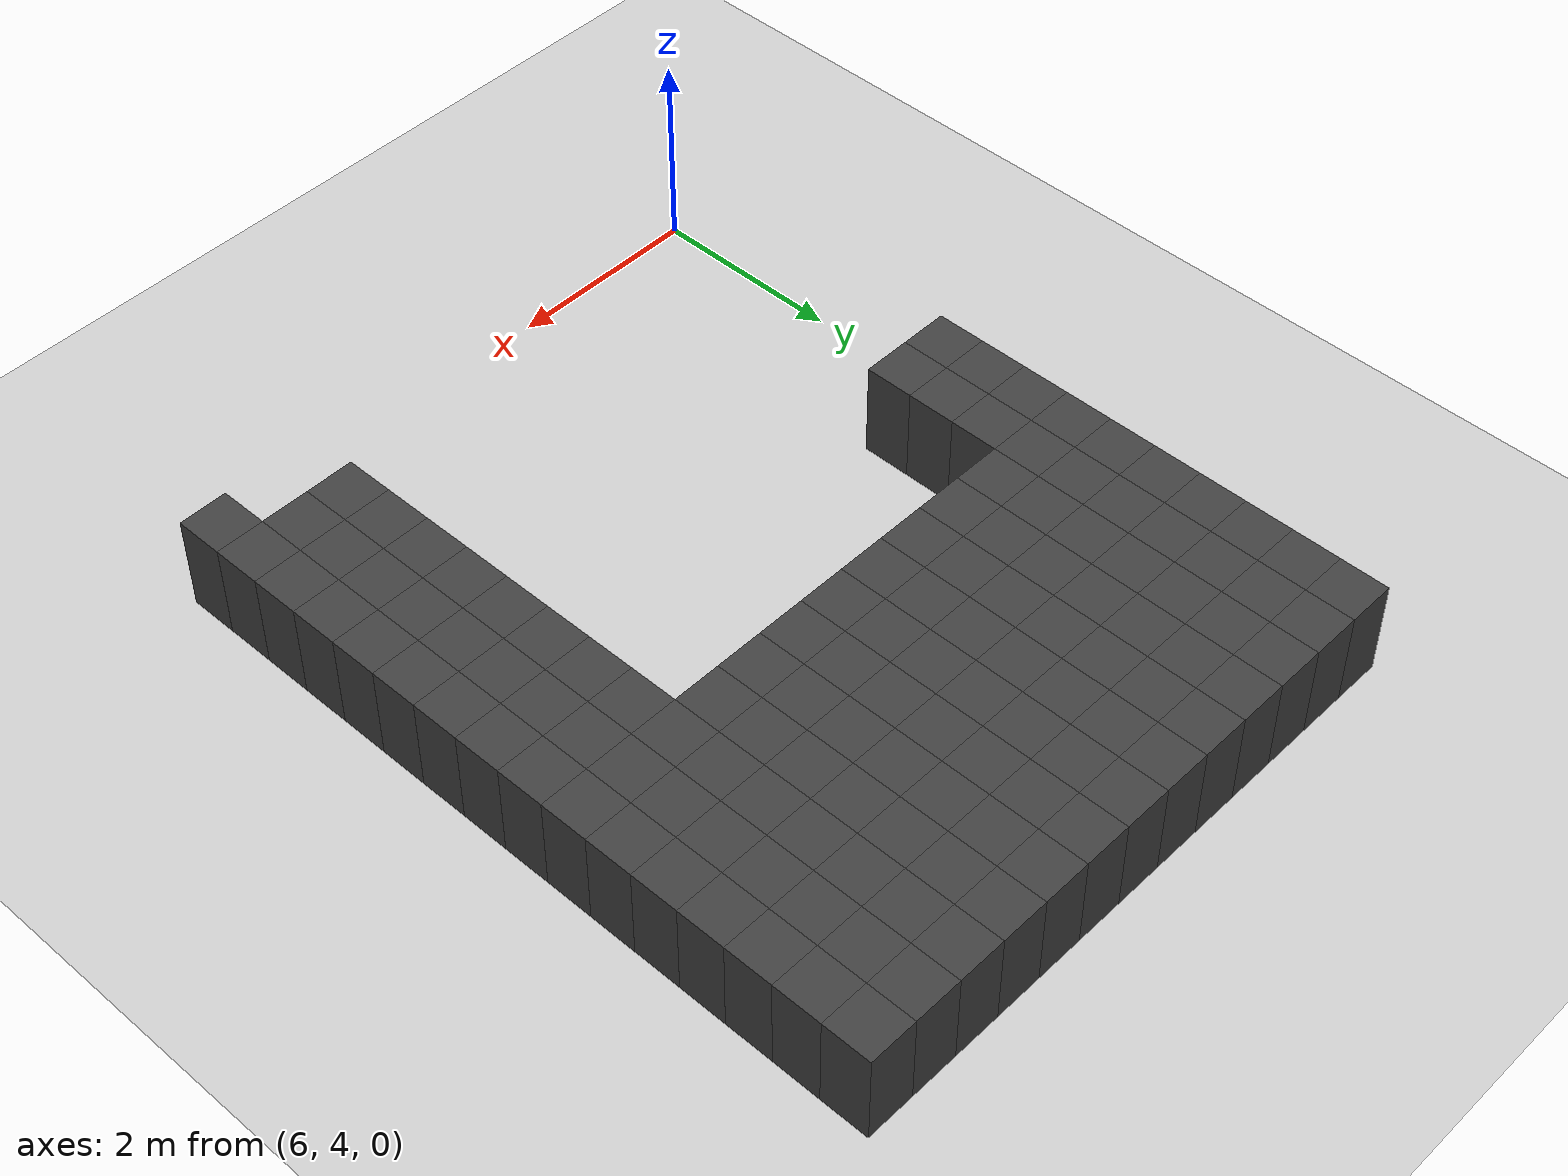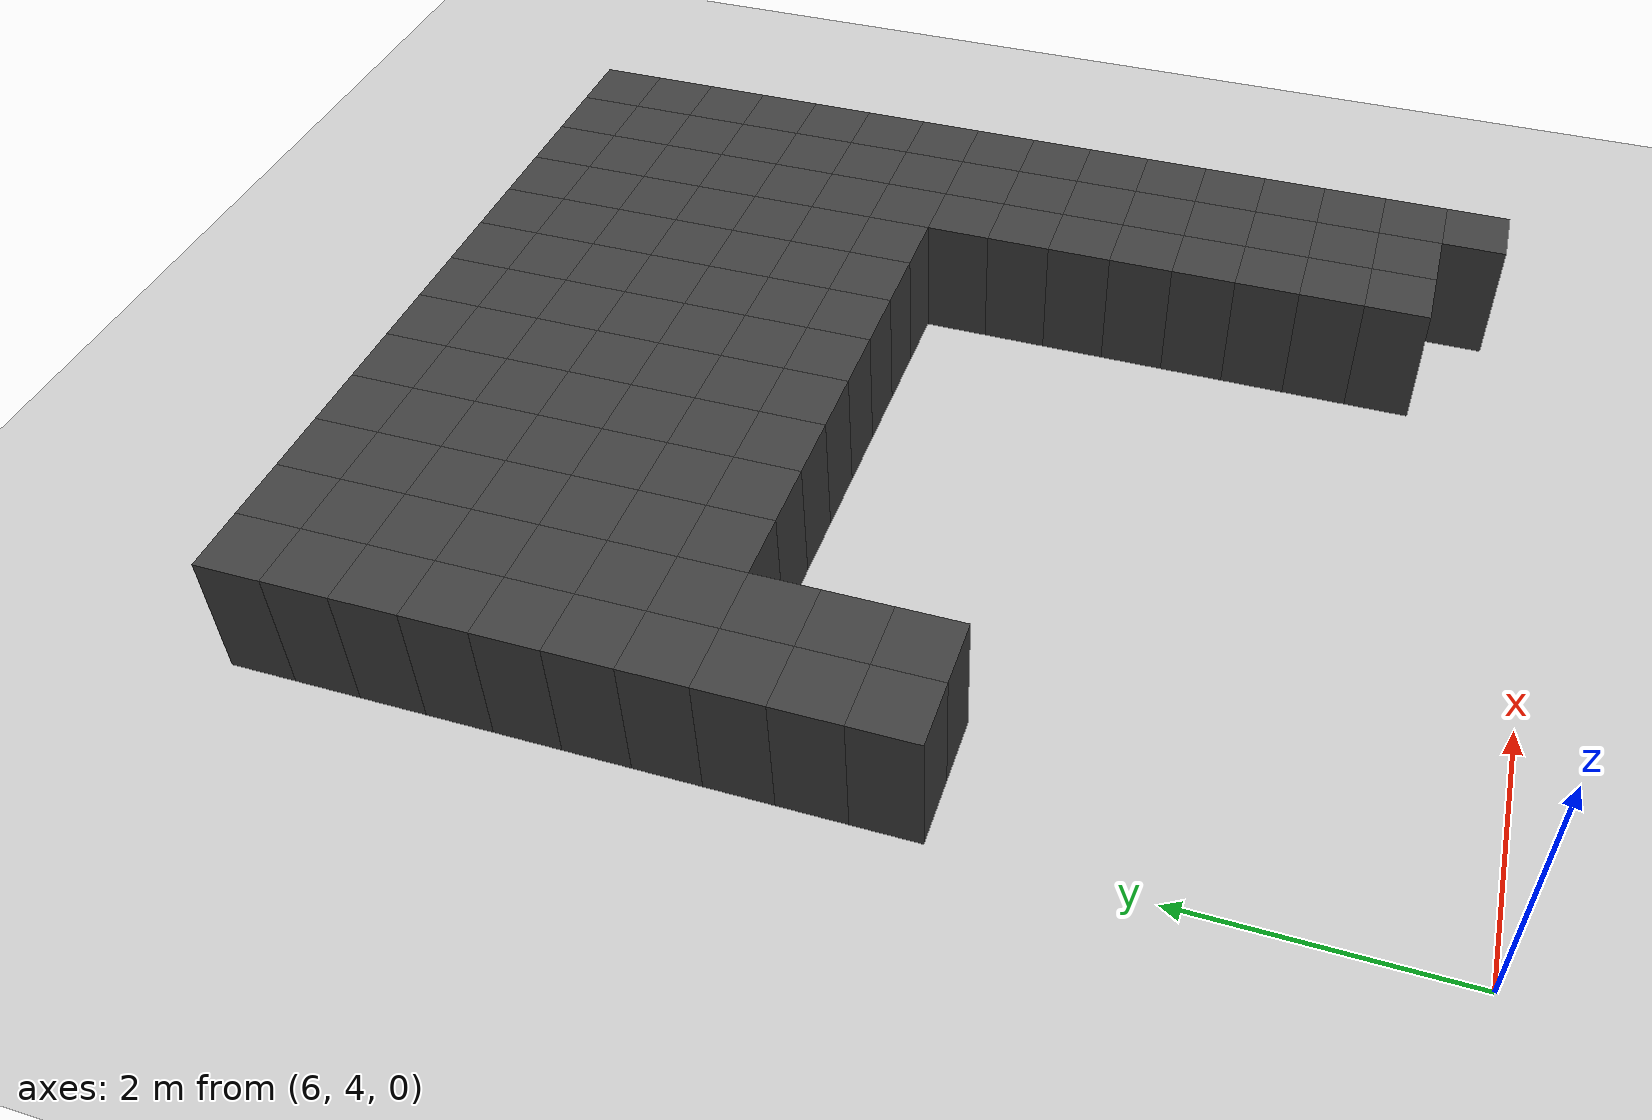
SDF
<sdf version="1.7">
 <world name="map_14547">
  <model name="ground_plane">
   <static>true</static>
   <link name="link">
    <collision name="collision">
     <geometry><plane><normal>0 0 1</normal><size>200 200</size></plane></geometry>
    </collision>
    <visual name="visual">
     <geometry><plane><normal>0 0 1</normal><size>200 200</size></plane></geometry>
     <material><ambient>0.8 0.8 0.8 1</ambient><diffuse>0.8 0.8 0.8 1</diffuse></material>
    </visual>
   </link>
  </model>
  <model name="maze_environment">
   <static>true</static>
   <link name="wall_37">
    <pose>6.250 12.250 0.500 0 0 0</pose>
    <collision name="col"><geometry><box><size>0.5 0.5 1.0</size></box></geometry></collision>
    <visual name="vis">
     <geometry><box><size>0.5 0.5 1.0</size></box></geometry>
     <material><ambient>0.15 0.15 0.15 1</ambient><diffuse>0.25 0.25 0.25 1</diffuse></material>
    </visual>
   </link>
   <link name="wall_38">
    <pose>6.750 12.250 0.500 0 0 0</pose>
    <collision name="col"><geometry><box><size>0.5 0.5 1.0</size></box></geometry></collision>
    <visual name="vis">
     <geometry><box><size>0.5 0.5 1.0</size></box></geometry>
     <material><ambient>0.15 0.15 0.15 1</ambient><diffuse>0.25 0.25 0.25 1</diffuse></material>
    </visual>
   </link>
   <link name="wall_39">
    <pose>7.250 12.250 0.500 0 0 0</pose>
    <collision name="col"><geometry><box><size>0.5 0.5 1.0</size></box></geometry></collision>
    <visual name="vis">
     <geometry><box><size>0.5 0.5 1.0</size></box></geometry>
     <material><ambient>0.15 0.15 0.15 1</ambient><diffuse>0.25 0.25 0.25 1</diffuse></material>
    </visual>
   </link>
   <link name="wall_40">
    <pose>7.750 12.250 0.500 0 0 0</pose>
    <collision name="col"><geometry><box><size>0.5 0.5 1.0</size></box></geometry></collision>
    <visual name="vis">
     <geometry><box><size>0.5 0.5 1.0</size></box></geometry>
     <material><ambient>0.15 0.15 0.15 1</ambient><diffuse>0.25 0.25 0.25 1</diffuse></material>
    </visual>
   </link>
   <link name="wall_41">
    <pose>8.250 12.250 0.500 0 0 0</pose>
    <collision name="col"><geometry><box><size>0.5 0.5 1.0</size></box></geometry></collision>
    <visual name="vis">
     <geometry><box><size>0.5 0.5 1.0</size></box></geometry>
     <material><ambient>0.15 0.15 0.15 1</ambient><diffuse>0.25 0.25 0.25 1</diffuse></material>
    </visual>
   </link>
   <link name="wall_42">
    <pose>8.750 12.250 0.500 0 0 0</pose>
    <collision name="col"><geometry><box><size>0.5 0.5 1.0</size></box></geometry></collision>
    <visual name="vis">
     <geometry><box><size>0.5 0.5 1.0</size></box></geometry>
     <material><ambient>0.15 0.15 0.15 1</ambient><diffuse>0.25 0.25 0.25 1</diffuse></material>
    </visual>
   </link>
   <link name="wall_43">
    <pose>9.250 12.250 0.500 0 0 0</pose>
    <collision name="col"><geometry><box><size>0.5 0.5 1.0</size></box></geometry></collision>
    <visual name="vis">
     <geometry><box><size>0.5 0.5 1.0</size></box></geometry>
     <material><ambient>0.15 0.15 0.15 1</ambient><diffuse>0.25 0.25 0.25 1</diffuse></material>
    </visual>
   </link>
   <link name="wall_44">
    <pose>9.750 12.250 0.500 0 0 0</pose>
    <collision name="col"><geometry><box><size>0.5 0.5 1.0</size></box></geometry></collision>
    <visual name="vis">
     <geometry><box><size>0.5 0.5 1.0</size></box></geometry>
     <material><ambient>0.15 0.15 0.15 1</ambient><diffuse>0.25 0.25 0.25 1</diffuse></material>
    </visual>
   </link>
   <link name="wall_45">
    <pose>10.250 12.250 0.500 0 0 0</pose>
    <collision name="col"><geometry><box><size>0.5 0.5 1.0</size></box></geometry></collision>
    <visual name="vis">
     <geometry><box><size>0.5 0.5 1.0</size></box></geometry>
     <material><ambient>0.15 0.15 0.15 1</ambient><diffuse>0.25 0.25 0.25 1</diffuse></material>
    </visual>
   </link>
   <link name="wall_46">
    <pose>10.750 12.250 0.500 0 0 0</pose>
    <collision name="col"><geometry><box><size>0.5 0.5 1.0</size></box></geometry></collision>
    <visual name="vis">
     <geometry><box><size>0.5 0.5 1.0</size></box></geometry>
     <material><ambient>0.15 0.15 0.15 1</ambient><diffuse>0.25 0.25 0.25 1</diffuse></material>
    </visual>
   </link>
   <link name="wall_47">
    <pose>11.250 12.250 0.500 0 0 0</pose>
    <collision name="col"><geometry><box><size>0.5 0.5 1.0</size></box></geometry></collision>
    <visual name="vis">
     <geometry><box><size>0.5 0.5 1.0</size></box></geometry>
     <material><ambient>0.15 0.15 0.15 1</ambient><diffuse>0.25 0.25 0.25 1</diffuse></material>
    </visual>
   </link>
   <link name="wall_48">
    <pose>11.750 12.250 0.500 0 0 0</pose>
    <collision name="col"><geometry><box><size>0.5 0.5 1.0</size></box></geometry></collision>
    <visual name="vis">
     <geometry><box><size>0.5 0.5 1.0</size></box></geometry>
     <material><ambient>0.15 0.15 0.15 1</ambient><diffuse>0.25 0.25 0.25 1</diffuse></material>
    </visual>
   </link>
   <link name="wall_49">
    <pose>12.250 12.250 0.500 0 0 0</pose>
    <collision name="col"><geometry><box><size>0.5 0.5 1.0</size></box></geometry></collision>
    <visual name="vis">
     <geometry><box><size>0.5 0.5 1.0</size></box></geometry>
     <material><ambient>0.15 0.15 0.15 1</ambient><diffuse>0.25 0.25 0.25 1</diffuse></material>
    </visual>
   </link>
   <link name="wall_77">
    <pose>6.250 11.750 0.500 0 0 0</pose>
    <collision name="col"><geometry><box><size>0.5 0.5 1.0</size></box></geometry></collision>
    <visual name="vis">
     <geometry><box><size>0.5 0.5 1.0</size></box></geometry>
     <material><ambient>0.15 0.15 0.15 1</ambient><diffuse>0.25 0.25 0.25 1</diffuse></material>
    </visual>
   </link>
   <link name="wall_78">
    <pose>6.750 11.750 0.500 0 0 0</pose>
    <collision name="col"><geometry><box><size>0.5 0.5 1.0</size></box></geometry></collision>
    <visual name="vis">
     <geometry><box><size>0.5 0.5 1.0</size></box></geometry>
     <material><ambient>0.15 0.15 0.15 1</ambient><diffuse>0.25 0.25 0.25 1</diffuse></material>
    </visual>
   </link>
   <link name="wall_79">
    <pose>7.250 11.750 0.500 0 0 0</pose>
    <collision name="col"><geometry><box><size>0.5 0.5 1.0</size></box></geometry></collision>
    <visual name="vis">
     <geometry><box><size>0.5 0.5 1.0</size></box></geometry>
     <material><ambient>0.15 0.15 0.15 1</ambient><diffuse>0.25 0.25 0.25 1</diffuse></material>
    </visual>
   </link>
   <link name="wall_80">
    <pose>7.750 11.750 0.500 0 0 0</pose>
    <collision name="col"><geometry><box><size>0.5 0.5 1.0</size></box></geometry></collision>
    <visual name="vis">
     <geometry><box><size>0.5 0.5 1.0</size></box></geometry>
     <material><ambient>0.15 0.15 0.15 1</ambient><diffuse>0.25 0.25 0.25 1</diffuse></material>
    </visual>
   </link>
   <link name="wall_81">
    <pose>8.250 11.750 0.500 0 0 0</pose>
    <collision name="col"><geometry><box><size>0.5 0.5 1.0</size></box></geometry></collision>
    <visual name="vis">
     <geometry><box><size>0.5 0.5 1.0</size></box></geometry>
     <material><ambient>0.15 0.15 0.15 1</ambient><diffuse>0.25 0.25 0.25 1</diffuse></material>
    </visual>
   </link>
   <link name="wall_82">
    <pose>8.750 11.750 0.500 0 0 0</pose>
    <collision name="col"><geometry><box><size>0.5 0.5 1.0</size></box></geometry></collision>
    <visual name="vis">
     <geometry><box><size>0.5 0.5 1.0</size></box></geometry>
     <material><ambient>0.15 0.15 0.15 1</ambient><diffuse>0.25 0.25 0.25 1</diffuse></material>
    </visual>
   </link>
   <link name="wall_83">
    <pose>9.250 11.750 0.500 0 0 0</pose>
    <collision name="col"><geometry><box><size>0.5 0.5 1.0</size></box></geometry></collision>
    <visual name="vis">
     <geometry><box><size>0.5 0.5 1.0</size></box></geometry>
     <material><ambient>0.15 0.15 0.15 1</ambient><diffuse>0.25 0.25 0.25 1</diffuse></material>
    </visual>
   </link>
   <link name="wall_84">
    <pose>9.750 11.750 0.500 0 0 0</pose>
    <collision name="col"><geometry><box><size>0.5 0.5 1.0</size></box></geometry></collision>
    <visual name="vis">
     <geometry><box><size>0.5 0.5 1.0</size></box></geometry>
     <material><ambient>0.15 0.15 0.15 1</ambient><diffuse>0.25 0.25 0.25 1</diffuse></material>
    </visual>
   </link>
   <link name="wall_85">
    <pose>10.250 11.750 0.500 0 0 0</pose>
    <collision name="col"><geometry><box><size>0.5 0.5 1.0</size></box></geometry></collision>
    <visual name="vis">
     <geometry><box><size>0.5 0.5 1.0</size></box></geometry>
     <material><ambient>0.15 0.15 0.15 1</ambient><diffuse>0.25 0.25 0.25 1</diffuse></material>
    </visual>
   </link>
   <link name="wall_86">
    <pose>10.750 11.750 0.500 0 0 0</pose>
    <collision name="col"><geometry><box><size>0.5 0.5 1.0</size></box></geometry></collision>
    <visual name="vis">
     <geometry><box><size>0.5 0.5 1.0</size></box></geometry>
     <material><ambient>0.15 0.15 0.15 1</ambient><diffuse>0.25 0.25 0.25 1</diffuse></material>
    </visual>
   </link>
   <link name="wall_87">
    <pose>11.250 11.750 0.500 0 0 0</pose>
    <collision name="col"><geometry><box><size>0.5 0.5 1.0</size></box></geometry></collision>
    <visual name="vis">
     <geometry><box><size>0.5 0.5 1.0</size></box></geometry>
     <material><ambient>0.15 0.15 0.15 1</ambient><diffuse>0.25 0.25 0.25 1</diffuse></material>
    </visual>
   </link>
   <link name="wall_88">
    <pose>11.750 11.750 0.500 0 0 0</pose>
    <collision name="col"><geometry><box><size>0.5 0.5 1.0</size></box></geometry></collision>
    <visual name="vis">
     <geometry><box><size>0.5 0.5 1.0</size></box></geometry>
     <material><ambient>0.15 0.15 0.15 1</ambient><diffuse>0.25 0.25 0.25 1</diffuse></material>
    </visual>
   </link>
   <link name="wall_89">
    <pose>12.250 11.750 0.500 0 0 0</pose>
    <collision name="col"><geometry><box><size>0.5 0.5 1.0</size></box></geometry></collision>
    <visual name="vis">
     <geometry><box><size>0.5 0.5 1.0</size></box></geometry>
     <material><ambient>0.15 0.15 0.15 1</ambient><diffuse>0.25 0.25 0.25 1</diffuse></material>
    </visual>
   </link>
   <link name="wall_109">
    <pose>6.250 11.250 0.500 0 0 0</pose>
    <collision name="col"><geometry><box><size>0.5 0.5 1.0</size></box></geometry></collision>
    <visual name="vis">
     <geometry><box><size>0.5 0.5 1.0</size></box></geometry>
     <material><ambient>0.15 0.15 0.15 1</ambient><diffuse>0.25 0.25 0.25 1</diffuse></material>
    </visual>
   </link>
   <link name="wall_110">
    <pose>6.750 11.250 0.500 0 0 0</pose>
    <collision name="col"><geometry><box><size>0.5 0.5 1.0</size></box></geometry></collision>
    <visual name="vis">
     <geometry><box><size>0.5 0.5 1.0</size></box></geometry>
     <material><ambient>0.15 0.15 0.15 1</ambient><diffuse>0.25 0.25 0.25 1</diffuse></material>
    </visual>
   </link>
   <link name="wall_111">
    <pose>7.250 11.250 0.500 0 0 0</pose>
    <collision name="col"><geometry><box><size>0.5 0.5 1.0</size></box></geometry></collision>
    <visual name="vis">
     <geometry><box><size>0.5 0.5 1.0</size></box></geometry>
     <material><ambient>0.15 0.15 0.15 1</ambient><diffuse>0.25 0.25 0.25 1</diffuse></material>
    </visual>
   </link>
   <link name="wall_112">
    <pose>7.750 11.250 0.500 0 0 0</pose>
    <collision name="col"><geometry><box><size>0.5 0.5 1.0</size></box></geometry></collision>
    <visual name="vis">
     <geometry><box><size>0.5 0.5 1.0</size></box></geometry>
     <material><ambient>0.15 0.15 0.15 1</ambient><diffuse>0.25 0.25 0.25 1</diffuse></material>
    </visual>
   </link>
   <link name="wall_113">
    <pose>8.250 11.250 0.500 0 0 0</pose>
    <collision name="col"><geometry><box><size>0.5 0.5 1.0</size></box></geometry></collision>
    <visual name="vis">
     <geometry><box><size>0.5 0.5 1.0</size></box></geometry>
     <material><ambient>0.15 0.15 0.15 1</ambient><diffuse>0.25 0.25 0.25 1</diffuse></material>
    </visual>
   </link>
   <link name="wall_114">
    <pose>8.750 11.250 0.500 0 0 0</pose>
    <collision name="col"><geometry><box><size>0.5 0.5 1.0</size></box></geometry></collision>
    <visual name="vis">
     <geometry><box><size>0.5 0.5 1.0</size></box></geometry>
     <material><ambient>0.15 0.15 0.15 1</ambient><diffuse>0.25 0.25 0.25 1</diffuse></material>
    </visual>
   </link>
   <link name="wall_115">
    <pose>9.250 11.250 0.500 0 0 0</pose>
    <collision name="col"><geometry><box><size>0.5 0.5 1.0</size></box></geometry></collision>
    <visual name="vis">
     <geometry><box><size>0.5 0.5 1.0</size></box></geometry>
     <material><ambient>0.15 0.15 0.15 1</ambient><diffuse>0.25 0.25 0.25 1</diffuse></material>
    </visual>
   </link>
   <link name="wall_116">
    <pose>9.750 11.250 0.500 0 0 0</pose>
    <collision name="col"><geometry><box><size>0.5 0.5 1.0</size></box></geometry></collision>
    <visual name="vis">
     <geometry><box><size>0.5 0.5 1.0</size></box></geometry>
     <material><ambient>0.15 0.15 0.15 1</ambient><diffuse>0.25 0.25 0.25 1</diffuse></material>
    </visual>
   </link>
   <link name="wall_117">
    <pose>10.250 11.250 0.500 0 0 0</pose>
    <collision name="col"><geometry><box><size>0.5 0.5 1.0</size></box></geometry></collision>
    <visual name="vis">
     <geometry><box><size>0.5 0.5 1.0</size></box></geometry>
     <material><ambient>0.15 0.15 0.15 1</ambient><diffuse>0.25 0.25 0.25 1</diffuse></material>
    </visual>
   </link>
   <link name="wall_118">
    <pose>10.750 11.250 0.500 0 0 0</pose>
    <collision name="col"><geometry><box><size>0.5 0.5 1.0</size></box></geometry></collision>
    <visual name="vis">
     <geometry><box><size>0.5 0.5 1.0</size></box></geometry>
     <material><ambient>0.15 0.15 0.15 1</ambient><diffuse>0.25 0.25 0.25 1</diffuse></material>
    </visual>
   </link>
   <link name="wall_119">
    <pose>11.250 11.250 0.500 0 0 0</pose>
    <collision name="col"><geometry><box><size>0.5 0.5 1.0</size></box></geometry></collision>
    <visual name="vis">
     <geometry><box><size>0.5 0.5 1.0</size></box></geometry>
     <material><ambient>0.15 0.15 0.15 1</ambient><diffuse>0.25 0.25 0.25 1</diffuse></material>
    </visual>
   </link>
   <link name="wall_120">
    <pose>11.750 11.250 0.500 0 0 0</pose>
    <collision name="col"><geometry><box><size>0.5 0.5 1.0</size></box></geometry></collision>
    <visual name="vis">
     <geometry><box><size>0.5 0.5 1.0</size></box></geometry>
     <material><ambient>0.15 0.15 0.15 1</ambient><diffuse>0.25 0.25 0.25 1</diffuse></material>
    </visual>
   </link>
   <link name="wall_121">
    <pose>12.250 11.250 0.500 0 0 0</pose>
    <collision name="col"><geometry><box><size>0.5 0.5 1.0</size></box></geometry></collision>
    <visual name="vis">
     <geometry><box><size>0.5 0.5 1.0</size></box></geometry>
     <material><ambient>0.15 0.15 0.15 1</ambient><diffuse>0.25 0.25 0.25 1</diffuse></material>
    </visual>
   </link>
   <link name="wall_141">
    <pose>6.250 10.750 0.500 0 0 0</pose>
    <collision name="col"><geometry><box><size>0.5 0.5 1.0</size></box></geometry></collision>
    <visual name="vis">
     <geometry><box><size>0.5 0.5 1.0</size></box></geometry>
     <material><ambient>0.15 0.15 0.15 1</ambient><diffuse>0.25 0.25 0.25 1</diffuse></material>
    </visual>
   </link>
   <link name="wall_142">
    <pose>6.750 10.750 0.500 0 0 0</pose>
    <collision name="col"><geometry><box><size>0.5 0.5 1.0</size></box></geometry></collision>
    <visual name="vis">
     <geometry><box><size>0.5 0.5 1.0</size></box></geometry>
     <material><ambient>0.15 0.15 0.15 1</ambient><diffuse>0.25 0.25 0.25 1</diffuse></material>
    </visual>
   </link>
   <link name="wall_143">
    <pose>7.250 10.750 0.500 0 0 0</pose>
    <collision name="col"><geometry><box><size>0.5 0.5 1.0</size></box></geometry></collision>
    <visual name="vis">
     <geometry><box><size>0.5 0.5 1.0</size></box></geometry>
     <material><ambient>0.15 0.15 0.15 1</ambient><diffuse>0.25 0.25 0.25 1</diffuse></material>
    </visual>
   </link>
   <link name="wall_144">
    <pose>7.750 10.750 0.500 0 0 0</pose>
    <collision name="col"><geometry><box><size>0.5 0.5 1.0</size></box></geometry></collision>
    <visual name="vis">
     <geometry><box><size>0.5 0.5 1.0</size></box></geometry>
     <material><ambient>0.15 0.15 0.15 1</ambient><diffuse>0.25 0.25 0.25 1</diffuse></material>
    </visual>
   </link>
   <link name="wall_145">
    <pose>8.250 10.750 0.500 0 0 0</pose>
    <collision name="col"><geometry><box><size>0.5 0.5 1.0</size></box></geometry></collision>
    <visual name="vis">
     <geometry><box><size>0.5 0.5 1.0</size></box></geometry>
     <material><ambient>0.15 0.15 0.15 1</ambient><diffuse>0.25 0.25 0.25 1</diffuse></material>
    </visual>
   </link>
   <link name="wall_146">
    <pose>8.750 10.750 0.500 0 0 0</pose>
    <collision name="col"><geometry><box><size>0.5 0.5 1.0</size></box></geometry></collision>
    <visual name="vis">
     <geometry><box><size>0.5 0.5 1.0</size></box></geometry>
     <material><ambient>0.15 0.15 0.15 1</ambient><diffuse>0.25 0.25 0.25 1</diffuse></material>
    </visual>
   </link>
   <link name="wall_147">
    <pose>9.250 10.750 0.500 0 0 0</pose>
    <collision name="col"><geometry><box><size>0.5 0.5 1.0</size></box></geometry></collision>
    <visual name="vis">
     <geometry><box><size>0.5 0.5 1.0</size></box></geometry>
     <material><ambient>0.15 0.15 0.15 1</ambient><diffuse>0.25 0.25 0.25 1</diffuse></material>
    </visual>
   </link>
   <link name="wall_148">
    <pose>9.750 10.750 0.500 0 0 0</pose>
    <collision name="col"><geometry><box><size>0.5 0.5 1.0</size></box></geometry></collision>
    <visual name="vis">
     <geometry><box><size>0.5 0.5 1.0</size></box></geometry>
     <material><ambient>0.15 0.15 0.15 1</ambient><diffuse>0.25 0.25 0.25 1</diffuse></material>
    </visual>
   </link>
   <link name="wall_149">
    <pose>10.250 10.750 0.500 0 0 0</pose>
    <collision name="col"><geometry><box><size>0.5 0.5 1.0</size></box></geometry></collision>
    <visual name="vis">
     <geometry><box><size>0.5 0.5 1.0</size></box></geometry>
     <material><ambient>0.15 0.15 0.15 1</ambient><diffuse>0.25 0.25 0.25 1</diffuse></material>
    </visual>
   </link>
   <link name="wall_150">
    <pose>10.750 10.750 0.500 0 0 0</pose>
    <collision name="col"><geometry><box><size>0.5 0.5 1.0</size></box></geometry></collision>
    <visual name="vis">
     <geometry><box><size>0.5 0.5 1.0</size></box></geometry>
     <material><ambient>0.15 0.15 0.15 1</ambient><diffuse>0.25 0.25 0.25 1</diffuse></material>
    </visual>
   </link>
   <link name="wall_151">
    <pose>11.250 10.750 0.500 0 0 0</pose>
    <collision name="col"><geometry><box><size>0.5 0.5 1.0</size></box></geometry></collision>
    <visual name="vis">
     <geometry><box><size>0.5 0.5 1.0</size></box></geometry>
     <material><ambient>0.15 0.15 0.15 1</ambient><diffuse>0.25 0.25 0.25 1</diffuse></material>
    </visual>
   </link>
   <link name="wall_152">
    <pose>11.750 10.750 0.500 0 0 0</pose>
    <collision name="col"><geometry><box><size>0.5 0.5 1.0</size></box></geometry></collision>
    <visual name="vis">
     <geometry><box><size>0.5 0.5 1.0</size></box></geometry>
     <material><ambient>0.15 0.15 0.15 1</ambient><diffuse>0.25 0.25 0.25 1</diffuse></material>
    </visual>
   </link>
   <link name="wall_153">
    <pose>12.250 10.750 0.500 0 0 0</pose>
    <collision name="col"><geometry><box><size>0.5 0.5 1.0</size></box></geometry></collision>
    <visual name="vis">
     <geometry><box><size>0.5 0.5 1.0</size></box></geometry>
     <material><ambient>0.15 0.15 0.15 1</ambient><diffuse>0.25 0.25 0.25 1</diffuse></material>
    </visual>
   </link>
   <link name="wall_170">
    <pose>6.250 10.250 0.500 0 0 0</pose>
    <collision name="col"><geometry><box><size>0.5 0.5 1.0</size></box></geometry></collision>
    <visual name="vis">
     <geometry><box><size>0.5 0.5 1.0</size></box></geometry>
     <material><ambient>0.15 0.15 0.15 1</ambient><diffuse>0.25 0.25 0.25 1</diffuse></material>
    </visual>
   </link>
   <link name="wall_171">
    <pose>6.750 10.250 0.500 0 0 0</pose>
    <collision name="col"><geometry><box><size>0.5 0.5 1.0</size></box></geometry></collision>
    <visual name="vis">
     <geometry><box><size>0.5 0.5 1.0</size></box></geometry>
     <material><ambient>0.15 0.15 0.15 1</ambient><diffuse>0.25 0.25 0.25 1</diffuse></material>
    </visual>
   </link>
   <link name="wall_172">
    <pose>7.250 10.250 0.500 0 0 0</pose>
    <collision name="col"><geometry><box><size>0.5 0.5 1.0</size></box></geometry></collision>
    <visual name="vis">
     <geometry><box><size>0.5 0.5 1.0</size></box></geometry>
     <material><ambient>0.15 0.15 0.15 1</ambient><diffuse>0.25 0.25 0.25 1</diffuse></material>
    </visual>
   </link>
   <link name="wall_173">
    <pose>7.750 10.250 0.500 0 0 0</pose>
    <collision name="col"><geometry><box><size>0.5 0.5 1.0</size></box></geometry></collision>
    <visual name="vis">
     <geometry><box><size>0.5 0.5 1.0</size></box></geometry>
     <material><ambient>0.15 0.15 0.15 1</ambient><diffuse>0.25 0.25 0.25 1</diffuse></material>
    </visual>
   </link>
   <link name="wall_174">
    <pose>8.250 10.250 0.500 0 0 0</pose>
    <collision name="col"><geometry><box><size>0.5 0.5 1.0</size></box></geometry></collision>
    <visual name="vis">
     <geometry><box><size>0.5 0.5 1.0</size></box></geometry>
     <material><ambient>0.15 0.15 0.15 1</ambient><diffuse>0.25 0.25 0.25 1</diffuse></material>
    </visual>
   </link>
   <link name="wall_175">
    <pose>8.750 10.250 0.500 0 0 0</pose>
    <collision name="col"><geometry><box><size>0.5 0.5 1.0</size></box></geometry></collision>
    <visual name="vis">
     <geometry><box><size>0.5 0.5 1.0</size></box></geometry>
     <material><ambient>0.15 0.15 0.15 1</ambient><diffuse>0.25 0.25 0.25 1</diffuse></material>
    </visual>
   </link>
   <link name="wall_176">
    <pose>9.250 10.250 0.500 0 0 0</pose>
    <collision name="col"><geometry><box><size>0.5 0.5 1.0</size></box></geometry></collision>
    <visual name="vis">
     <geometry><box><size>0.5 0.5 1.0</size></box></geometry>
     <material><ambient>0.15 0.15 0.15 1</ambient><diffuse>0.25 0.25 0.25 1</diffuse></material>
    </visual>
   </link>
   <link name="wall_177">
    <pose>9.750 10.250 0.500 0 0 0</pose>
    <collision name="col"><geometry><box><size>0.5 0.5 1.0</size></box></geometry></collision>
    <visual name="vis">
     <geometry><box><size>0.5 0.5 1.0</size></box></geometry>
     <material><ambient>0.15 0.15 0.15 1</ambient><diffuse>0.25 0.25 0.25 1</diffuse></material>
    </visual>
   </link>
   <link name="wall_178">
    <pose>10.250 10.250 0.500 0 0 0</pose>
    <collision name="col"><geometry><box><size>0.5 0.5 1.0</size></box></geometry></collision>
    <visual name="vis">
     <geometry><box><size>0.5 0.5 1.0</size></box></geometry>
     <material><ambient>0.15 0.15 0.15 1</ambient><diffuse>0.25 0.25 0.25 1</diffuse></material>
    </visual>
   </link>
   <link name="wall_179">
    <pose>10.750 10.250 0.500 0 0 0</pose>
    <collision name="col"><geometry><box><size>0.5 0.5 1.0</size></box></geometry></collision>
    <visual name="vis">
     <geometry><box><size>0.5 0.5 1.0</size></box></geometry>
     <material><ambient>0.15 0.15 0.15 1</ambient><diffuse>0.25 0.25 0.25 1</diffuse></material>
    </visual>
   </link>
   <link name="wall_180">
    <pose>11.250 10.250 0.500 0 0 0</pose>
    <collision name="col"><geometry><box><size>0.5 0.5 1.0</size></box></geometry></collision>
    <visual name="vis">
     <geometry><box><size>0.5 0.5 1.0</size></box></geometry>
     <material><ambient>0.15 0.15 0.15 1</ambient><diffuse>0.25 0.25 0.25 1</diffuse></material>
    </visual>
   </link>
   <link name="wall_181">
    <pose>11.750 10.250 0.500 0 0 0</pose>
    <collision name="col"><geometry><box><size>0.5 0.5 1.0</size></box></geometry></collision>
    <visual name="vis">
     <geometry><box><size>0.5 0.5 1.0</size></box></geometry>
     <material><ambient>0.15 0.15 0.15 1</ambient><diffuse>0.25 0.25 0.25 1</diffuse></material>
    </visual>
   </link>
   <link name="wall_182">
    <pose>12.250 10.250 0.500 0 0 0</pose>
    <collision name="col"><geometry><box><size>0.5 0.5 1.0</size></box></geometry></collision>
    <visual name="vis">
     <geometry><box><size>0.5 0.5 1.0</size></box></geometry>
     <material><ambient>0.15 0.15 0.15 1</ambient><diffuse>0.25 0.25 0.25 1</diffuse></material>
    </visual>
   </link>
   <link name="wall_199">
    <pose>6.250 9.750 0.500 0 0 0</pose>
    <collision name="col"><geometry><box><size>0.5 0.5 1.0</size></box></geometry></collision>
    <visual name="vis">
     <geometry><box><size>0.5 0.5 1.0</size></box></geometry>
     <material><ambient>0.15 0.15 0.15 1</ambient><diffuse>0.25 0.25 0.25 1</diffuse></material>
    </visual>
   </link>
   <link name="wall_200">
    <pose>6.750 9.750 0.500 0 0 0</pose>
    <collision name="col"><geometry><box><size>0.5 0.5 1.0</size></box></geometry></collision>
    <visual name="vis">
     <geometry><box><size>0.5 0.5 1.0</size></box></geometry>
     <material><ambient>0.15 0.15 0.15 1</ambient><diffuse>0.25 0.25 0.25 1</diffuse></material>
    </visual>
   </link>
   <link name="wall_201">
    <pose>7.250 9.750 0.500 0 0 0</pose>
    <collision name="col"><geometry><box><size>0.5 0.5 1.0</size></box></geometry></collision>
    <visual name="vis">
     <geometry><box><size>0.5 0.5 1.0</size></box></geometry>
     <material><ambient>0.15 0.15 0.15 1</ambient><diffuse>0.25 0.25 0.25 1</diffuse></material>
    </visual>
   </link>
   <link name="wall_202">
    <pose>7.750 9.750 0.500 0 0 0</pose>
    <collision name="col"><geometry><box><size>0.5 0.5 1.0</size></box></geometry></collision>
    <visual name="vis">
     <geometry><box><size>0.5 0.5 1.0</size></box></geometry>
     <material><ambient>0.15 0.15 0.15 1</ambient><diffuse>0.25 0.25 0.25 1</diffuse></material>
    </visual>
   </link>
   <link name="wall_203">
    <pose>8.250 9.750 0.500 0 0 0</pose>
    <collision name="col"><geometry><box><size>0.5 0.5 1.0</size></box></geometry></collision>
    <visual name="vis">
     <geometry><box><size>0.5 0.5 1.0</size></box></geometry>
     <material><ambient>0.15 0.15 0.15 1</ambient><diffuse>0.25 0.25 0.25 1</diffuse></material>
    </visual>
   </link>
   <link name="wall_204">
    <pose>8.750 9.750 0.500 0 0 0</pose>
    <collision name="col"><geometry><box><size>0.5 0.5 1.0</size></box></geometry></collision>
    <visual name="vis">
     <geometry><box><size>0.5 0.5 1.0</size></box></geometry>
     <material><ambient>0.15 0.15 0.15 1</ambient><diffuse>0.25 0.25 0.25 1</diffuse></material>
    </visual>
   </link>
   <link name="wall_205">
    <pose>9.250 9.750 0.500 0 0 0</pose>
    <collision name="col"><geometry><box><size>0.5 0.5 1.0</size></box></geometry></collision>
    <visual name="vis">
     <geometry><box><size>0.5 0.5 1.0</size></box></geometry>
     <material><ambient>0.15 0.15 0.15 1</ambient><diffuse>0.25 0.25 0.25 1</diffuse></material>
    </visual>
   </link>
   <link name="wall_206">
    <pose>9.750 9.750 0.500 0 0 0</pose>
    <collision name="col"><geometry><box><size>0.5 0.5 1.0</size></box></geometry></collision>
    <visual name="vis">
     <geometry><box><size>0.5 0.5 1.0</size></box></geometry>
     <material><ambient>0.15 0.15 0.15 1</ambient><diffuse>0.25 0.25 0.25 1</diffuse></material>
    </visual>
   </link>
   <link name="wall_207">
    <pose>10.250 9.750 0.500 0 0 0</pose>
    <collision name="col"><geometry><box><size>0.5 0.5 1.0</size></box></geometry></collision>
    <visual name="vis">
     <geometry><box><size>0.5 0.5 1.0</size></box></geometry>
     <material><ambient>0.15 0.15 0.15 1</ambient><diffuse>0.25 0.25 0.25 1</diffuse></material>
    </visual>
   </link>
   <link name="wall_208">
    <pose>10.750 9.750 0.500 0 0 0</pose>
    <collision name="col"><geometry><box><size>0.5 0.5 1.0</size></box></geometry></collision>
    <visual name="vis">
     <geometry><box><size>0.5 0.5 1.0</size></box></geometry>
     <material><ambient>0.15 0.15 0.15 1</ambient><diffuse>0.25 0.25 0.25 1</diffuse></material>
    </visual>
   </link>
   <link name="wall_209">
    <pose>11.250 9.750 0.500 0 0 0</pose>
    <collision name="col"><geometry><box><size>0.5 0.5 1.0</size></box></geometry></collision>
    <visual name="vis">
     <geometry><box><size>0.5 0.5 1.0</size></box></geometry>
     <material><ambient>0.15 0.15 0.15 1</ambient><diffuse>0.25 0.25 0.25 1</diffuse></material>
    </visual>
   </link>
   <link name="wall_210">
    <pose>11.750 9.750 0.500 0 0 0</pose>
    <collision name="col"><geometry><box><size>0.5 0.5 1.0</size></box></geometry></collision>
    <visual name="vis">
     <geometry><box><size>0.5 0.5 1.0</size></box></geometry>
     <material><ambient>0.15 0.15 0.15 1</ambient><diffuse>0.25 0.25 0.25 1</diffuse></material>
    </visual>
   </link>
   <link name="wall_211">
    <pose>12.250 9.750 0.500 0 0 0</pose>
    <collision name="col"><geometry><box><size>0.5 0.5 1.0</size></box></geometry></collision>
    <visual name="vis">
     <geometry><box><size>0.5 0.5 1.0</size></box></geometry>
     <material><ambient>0.15 0.15 0.15 1</ambient><diffuse>0.25 0.25 0.25 1</diffuse></material>
    </visual>
   </link>
   <link name="wall_235">
    <pose>6.250 9.250 0.500 0 0 0</pose>
    <collision name="col"><geometry><box><size>0.5 0.5 1.0</size></box></geometry></collision>
    <visual name="vis">
     <geometry><box><size>0.5 0.5 1.0</size></box></geometry>
     <material><ambient>0.15 0.15 0.15 1</ambient><diffuse>0.25 0.25 0.25 1</diffuse></material>
    </visual>
   </link>
   <link name="wall_236">
    <pose>6.750 9.250 0.500 0 0 0</pose>
    <collision name="col"><geometry><box><size>0.5 0.5 1.0</size></box></geometry></collision>
    <visual name="vis">
     <geometry><box><size>0.5 0.5 1.0</size></box></geometry>
     <material><ambient>0.15 0.15 0.15 1</ambient><diffuse>0.25 0.25 0.25 1</diffuse></material>
    </visual>
   </link>
   <link name="wall_237">
    <pose>7.250 9.250 0.500 0 0 0</pose>
    <collision name="col"><geometry><box><size>0.5 0.5 1.0</size></box></geometry></collision>
    <visual name="vis">
     <geometry><box><size>0.5 0.5 1.0</size></box></geometry>
     <material><ambient>0.15 0.15 0.15 1</ambient><diffuse>0.25 0.25 0.25 1</diffuse></material>
    </visual>
   </link>
   <link name="wall_238">
    <pose>7.750 9.250 0.500 0 0 0</pose>
    <collision name="col"><geometry><box><size>0.5 0.5 1.0</size></box></geometry></collision>
    <visual name="vis">
     <geometry><box><size>0.5 0.5 1.0</size></box></geometry>
     <material><ambient>0.15 0.15 0.15 1</ambient><diffuse>0.25 0.25 0.25 1</diffuse></material>
    </visual>
   </link>
   <link name="wall_239">
    <pose>8.250 9.250 0.500 0 0 0</pose>
    <collision name="col"><geometry><box><size>0.5 0.5 1.0</size></box></geometry></collision>
    <visual name="vis">
     <geometry><box><size>0.5 0.5 1.0</size></box></geometry>
     <material><ambient>0.15 0.15 0.15 1</ambient><diffuse>0.25 0.25 0.25 1</diffuse></material>
    </visual>
   </link>
   <link name="wall_240">
    <pose>8.750 9.250 0.500 0 0 0</pose>
    <collision name="col"><geometry><box><size>0.5 0.5 1.0</size></box></geometry></collision>
    <visual name="vis">
     <geometry><box><size>0.5 0.5 1.0</size></box></geometry>
     <material><ambient>0.15 0.15 0.15 1</ambient><diffuse>0.25 0.25 0.25 1</diffuse></material>
    </visual>
   </link>
   <link name="wall_241">
    <pose>9.250 9.250 0.500 0 0 0</pose>
    <collision name="col"><geometry><box><size>0.5 0.5 1.0</size></box></geometry></collision>
    <visual name="vis">
     <geometry><box><size>0.5 0.5 1.0</size></box></geometry>
     <material><ambient>0.15 0.15 0.15 1</ambient><diffuse>0.25 0.25 0.25 1</diffuse></material>
    </visual>
   </link>
   <link name="wall_242">
    <pose>9.750 9.250 0.500 0 0 0</pose>
    <collision name="col"><geometry><box><size>0.5 0.5 1.0</size></box></geometry></collision>
    <visual name="vis">
     <geometry><box><size>0.5 0.5 1.0</size></box></geometry>
     <material><ambient>0.15 0.15 0.15 1</ambient><diffuse>0.25 0.25 0.25 1</diffuse></material>
    </visual>
   </link>
   <link name="wall_243">
    <pose>10.250 9.250 0.500 0 0 0</pose>
    <collision name="col"><geometry><box><size>0.5 0.5 1.0</size></box></geometry></collision>
    <visual name="vis">
     <geometry><box><size>0.5 0.5 1.0</size></box></geometry>
     <material><ambient>0.15 0.15 0.15 1</ambient><diffuse>0.25 0.25 0.25 1</diffuse></material>
    </visual>
   </link>
   <link name="wall_244">
    <pose>10.750 9.250 0.500 0 0 0</pose>
    <collision name="col"><geometry><box><size>0.5 0.5 1.0</size></box></geometry></collision>
    <visual name="vis">
     <geometry><box><size>0.5 0.5 1.0</size></box></geometry>
     <material><ambient>0.15 0.15 0.15 1</ambient><diffuse>0.25 0.25 0.25 1</diffuse></material>
    </visual>
   </link>
   <link name="wall_245">
    <pose>11.250 9.250 0.500 0 0 0</pose>
    <collision name="col"><geometry><box><size>0.5 0.5 1.0</size></box></geometry></collision>
    <visual name="vis">
     <geometry><box><size>0.5 0.5 1.0</size></box></geometry>
     <material><ambient>0.15 0.15 0.15 1</ambient><diffuse>0.25 0.25 0.25 1</diffuse></material>
    </visual>
   </link>
   <link name="wall_246">
    <pose>11.750 9.250 0.500 0 0 0</pose>
    <collision name="col"><geometry><box><size>0.5 0.5 1.0</size></box></geometry></collision>
    <visual name="vis">
     <geometry><box><size>0.5 0.5 1.0</size></box></geometry>
     <material><ambient>0.15 0.15 0.15 1</ambient><diffuse>0.25 0.25 0.25 1</diffuse></material>
    </visual>
   </link>
   <link name="wall_247">
    <pose>12.250 9.250 0.500 0 0 0</pose>
    <collision name="col"><geometry><box><size>0.5 0.5 1.0</size></box></geometry></collision>
    <visual name="vis">
     <geometry><box><size>0.5 0.5 1.0</size></box></geometry>
     <material><ambient>0.15 0.15 0.15 1</ambient><diffuse>0.25 0.25 0.25 1</diffuse></material>
    </visual>
   </link>
   <link name="wall_265">
    <pose>6.250 8.750 0.500 0 0 0</pose>
    <collision name="col"><geometry><box><size>0.5 0.5 1.0</size></box></geometry></collision>
    <visual name="vis">
     <geometry><box><size>0.5 0.5 1.0</size></box></geometry>
     <material><ambient>0.15 0.15 0.15 1</ambient><diffuse>0.25 0.25 0.25 1</diffuse></material>
    </visual>
   </link>
   <link name="wall_266">
    <pose>6.750 8.750 0.500 0 0 0</pose>
    <collision name="col"><geometry><box><size>0.5 0.5 1.0</size></box></geometry></collision>
    <visual name="vis">
     <geometry><box><size>0.5 0.5 1.0</size></box></geometry>
     <material><ambient>0.15 0.15 0.15 1</ambient><diffuse>0.25 0.25 0.25 1</diffuse></material>
    </visual>
   </link>
   <link name="wall_267">
    <pose>11.250 8.750 0.500 0 0 0</pose>
    <collision name="col"><geometry><box><size>0.5 0.5 1.0</size></box></geometry></collision>
    <visual name="vis">
     <geometry><box><size>0.5 0.5 1.0</size></box></geometry>
     <material><ambient>0.15 0.15 0.15 1</ambient><diffuse>0.25 0.25 0.25 1</diffuse></material>
    </visual>
   </link>
   <link name="wall_268">
    <pose>11.750 8.750 0.500 0 0 0</pose>
    <collision name="col"><geometry><box><size>0.5 0.5 1.0</size></box></geometry></collision>
    <visual name="vis">
     <geometry><box><size>0.5 0.5 1.0</size></box></geometry>
     <material><ambient>0.15 0.15 0.15 1</ambient><diffuse>0.25 0.25 0.25 1</diffuse></material>
    </visual>
   </link>
   <link name="wall_269">
    <pose>12.250 8.750 0.500 0 0 0</pose>
    <collision name="col"><geometry><box><size>0.5 0.5 1.0</size></box></geometry></collision>
    <visual name="vis">
     <geometry><box><size>0.5 0.5 1.0</size></box></geometry>
     <material><ambient>0.15 0.15 0.15 1</ambient><diffuse>0.25 0.25 0.25 1</diffuse></material>
    </visual>
   </link>
   <link name="wall_287">
    <pose>6.250 8.250 0.500 0 0 0</pose>
    <collision name="col"><geometry><box><size>0.5 0.5 1.0</size></box></geometry></collision>
    <visual name="vis">
     <geometry><box><size>0.5 0.5 1.0</size></box></geometry>
     <material><ambient>0.15 0.15 0.15 1</ambient><diffuse>0.25 0.25 0.25 1</diffuse></material>
    </visual>
   </link>
   <link name="wall_288">
    <pose>6.750 8.250 0.500 0 0 0</pose>
    <collision name="col"><geometry><box><size>0.5 0.5 1.0</size></box></geometry></collision>
    <visual name="vis">
     <geometry><box><size>0.5 0.5 1.0</size></box></geometry>
     <material><ambient>0.15 0.15 0.15 1</ambient><diffuse>0.25 0.25 0.25 1</diffuse></material>
    </visual>
   </link>
   <link name="wall_289">
    <pose>11.250 8.250 0.500 0 0 0</pose>
    <collision name="col"><geometry><box><size>0.5 0.5 1.0</size></box></geometry></collision>
    <visual name="vis">
     <geometry><box><size>0.5 0.5 1.0</size></box></geometry>
     <material><ambient>0.15 0.15 0.15 1</ambient><diffuse>0.25 0.25 0.25 1</diffuse></material>
    </visual>
   </link>
   <link name="wall_290">
    <pose>11.750 8.250 0.500 0 0 0</pose>
    <collision name="col"><geometry><box><size>0.5 0.5 1.0</size></box></geometry></collision>
    <visual name="vis">
     <geometry><box><size>0.5 0.5 1.0</size></box></geometry>
     <material><ambient>0.15 0.15 0.15 1</ambient><diffuse>0.25 0.25 0.25 1</diffuse></material>
    </visual>
   </link>
   <link name="wall_291">
    <pose>12.250 8.250 0.500 0 0 0</pose>
    <collision name="col"><geometry><box><size>0.5 0.5 1.0</size></box></geometry></collision>
    <visual name="vis">
     <geometry><box><size>0.5 0.5 1.0</size></box></geometry>
     <material><ambient>0.15 0.15 0.15 1</ambient><diffuse>0.25 0.25 0.25 1</diffuse></material>
    </visual>
   </link>
   <link name="wall_312">
    <pose>6.250 7.750 0.500 0 0 0</pose>
    <collision name="col"><geometry><box><size>0.5 0.5 1.0</size></box></geometry></collision>
    <visual name="vis">
     <geometry><box><size>0.5 0.5 1.0</size></box></geometry>
     <material><ambient>0.15 0.15 0.15 1</ambient><diffuse>0.25 0.25 0.25 1</diffuse></material>
    </visual>
   </link>
   <link name="wall_313">
    <pose>6.750 7.750 0.500 0 0 0</pose>
    <collision name="col"><geometry><box><size>0.5 0.5 1.0</size></box></geometry></collision>
    <visual name="vis">
     <geometry><box><size>0.5 0.5 1.0</size></box></geometry>
     <material><ambient>0.15 0.15 0.15 1</ambient><diffuse>0.25 0.25 0.25 1</diffuse></material>
    </visual>
   </link>
   <link name="wall_314">
    <pose>11.250 7.750 0.500 0 0 0</pose>
    <collision name="col"><geometry><box><size>0.5 0.5 1.0</size></box></geometry></collision>
    <visual name="vis">
     <geometry><box><size>0.5 0.5 1.0</size></box></geometry>
     <material><ambient>0.15 0.15 0.15 1</ambient><diffuse>0.25 0.25 0.25 1</diffuse></material>
    </visual>
   </link>
   <link name="wall_315">
    <pose>11.750 7.750 0.500 0 0 0</pose>
    <collision name="col"><geometry><box><size>0.5 0.5 1.0</size></box></geometry></collision>
    <visual name="vis">
     <geometry><box><size>0.5 0.5 1.0</size></box></geometry>
     <material><ambient>0.15 0.15 0.15 1</ambient><diffuse>0.25 0.25 0.25 1</diffuse></material>
    </visual>
   </link>
   <link name="wall_316">
    <pose>12.250 7.750 0.500 0 0 0</pose>
    <collision name="col"><geometry><box><size>0.5 0.5 1.0</size></box></geometry></collision>
    <visual name="vis">
     <geometry><box><size>0.5 0.5 1.0</size></box></geometry>
     <material><ambient>0.15 0.15 0.15 1</ambient><diffuse>0.25 0.25 0.25 1</diffuse></material>
    </visual>
   </link>
   <link name="wall_338">
    <pose>11.250 7.250 0.500 0 0 0</pose>
    <collision name="col"><geometry><box><size>0.5 0.5 1.0</size></box></geometry></collision>
    <visual name="vis">
     <geometry><box><size>0.5 0.5 1.0</size></box></geometry>
     <material><ambient>0.15 0.15 0.15 1</ambient><diffuse>0.25 0.25 0.25 1</diffuse></material>
    </visual>
   </link>
   <link name="wall_339">
    <pose>11.750 7.250 0.500 0 0 0</pose>
    <collision name="col"><geometry><box><size>0.5 0.5 1.0</size></box></geometry></collision>
    <visual name="vis">
     <geometry><box><size>0.5 0.5 1.0</size></box></geometry>
     <material><ambient>0.15 0.15 0.15 1</ambient><diffuse>0.25 0.25 0.25 1</diffuse></material>
    </visual>
   </link>
   <link name="wall_340">
    <pose>12.250 7.250 0.500 0 0 0</pose>
    <collision name="col"><geometry><box><size>0.5 0.5 1.0</size></box></geometry></collision>
    <visual name="vis">
     <geometry><box><size>0.5 0.5 1.0</size></box></geometry>
     <material><ambient>0.15 0.15 0.15 1</ambient><diffuse>0.25 0.25 0.25 1</diffuse></material>
    </visual>
   </link>
   <link name="wall_362">
    <pose>11.250 6.750 0.500 0 0 0</pose>
    <collision name="col"><geometry><box><size>0.5 0.5 1.0</size></box></geometry></collision>
    <visual name="vis">
     <geometry><box><size>0.5 0.5 1.0</size></box></geometry>
     <material><ambient>0.15 0.15 0.15 1</ambient><diffuse>0.25 0.25 0.25 1</diffuse></material>
    </visual>
   </link>
   <link name="wall_363">
    <pose>11.750 6.750 0.500 0 0 0</pose>
    <collision name="col"><geometry><box><size>0.5 0.5 1.0</size></box></geometry></collision>
    <visual name="vis">
     <geometry><box><size>0.5 0.5 1.0</size></box></geometry>
     <material><ambient>0.15 0.15 0.15 1</ambient><diffuse>0.25 0.25 0.25 1</diffuse></material>
    </visual>
   </link>
   <link name="wall_364">
    <pose>12.250 6.750 0.500 0 0 0</pose>
    <collision name="col"><geometry><box><size>0.5 0.5 1.0</size></box></geometry></collision>
    <visual name="vis">
     <geometry><box><size>0.5 0.5 1.0</size></box></geometry>
     <material><ambient>0.15 0.15 0.15 1</ambient><diffuse>0.25 0.25 0.25 1</diffuse></material>
    </visual>
   </link>
   <link name="wall_386">
    <pose>11.250 6.250 0.500 0 0 0</pose>
    <collision name="col"><geometry><box><size>0.5 0.5 1.0</size></box></geometry></collision>
    <visual name="vis">
     <geometry><box><size>0.5 0.5 1.0</size></box></geometry>
     <material><ambient>0.15 0.15 0.15 1</ambient><diffuse>0.25 0.25 0.25 1</diffuse></material>
    </visual>
   </link>
   <link name="wall_387">
    <pose>11.750 6.250 0.500 0 0 0</pose>
    <collision name="col"><geometry><box><size>0.5 0.5 1.0</size></box></geometry></collision>
    <visual name="vis">
     <geometry><box><size>0.5 0.5 1.0</size></box></geometry>
     <material><ambient>0.15 0.15 0.15 1</ambient><diffuse>0.25 0.25 0.25 1</diffuse></material>
    </visual>
   </link>
   <link name="wall_388">
    <pose>12.250 6.250 0.500 0 0 0</pose>
    <collision name="col"><geometry><box><size>0.5 0.5 1.0</size></box></geometry></collision>
    <visual name="vis">
     <geometry><box><size>0.5 0.5 1.0</size></box></geometry>
     <material><ambient>0.15 0.15 0.15 1</ambient><diffuse>0.25 0.25 0.25 1</diffuse></material>
    </visual>
   </link>
   <link name="wall_415">
    <pose>11.250 5.750 0.500 0 0 0</pose>
    <collision name="col"><geometry><box><size>0.5 0.5 1.0</size></box></geometry></collision>
    <visual name="vis">
     <geometry><box><size>0.5 0.5 1.0</size></box></geometry>
     <material><ambient>0.15 0.15 0.15 1</ambient><diffuse>0.25 0.25 0.25 1</diffuse></material>
    </visual>
   </link>
   <link name="wall_416">
    <pose>11.750 5.750 0.500 0 0 0</pose>
    <collision name="col"><geometry><box><size>0.5 0.5 1.0</size></box></geometry></collision>
    <visual name="vis">
     <geometry><box><size>0.5 0.5 1.0</size></box></geometry>
     <material><ambient>0.15 0.15 0.15 1</ambient><diffuse>0.25 0.25 0.25 1</diffuse></material>
    </visual>
   </link>
   <link name="wall_417">
    <pose>12.250 5.750 0.500 0 0 0</pose>
    <collision name="col"><geometry><box><size>0.5 0.5 1.0</size></box></geometry></collision>
    <visual name="vis">
     <geometry><box><size>0.5 0.5 1.0</size></box></geometry>
     <material><ambient>0.15 0.15 0.15 1</ambient><diffuse>0.25 0.25 0.25 1</diffuse></material>
    </visual>
   </link>
   <link name="wall_443">
    <pose>11.250 5.250 0.500 0 0 0</pose>
    <collision name="col"><geometry><box><size>0.5 0.5 1.0</size></box></geometry></collision>
    <visual name="vis">
     <geometry><box><size>0.5 0.5 1.0</size></box></geometry>
     <material><ambient>0.15 0.15 0.15 1</ambient><diffuse>0.25 0.25 0.25 1</diffuse></material>
    </visual>
   </link>
   <link name="wall_444">
    <pose>11.750 5.250 0.500 0 0 0</pose>
    <collision name="col"><geometry><box><size>0.5 0.5 1.0</size></box></geometry></collision>
    <visual name="vis">
     <geometry><box><size>0.5 0.5 1.0</size></box></geometry>
     <material><ambient>0.15 0.15 0.15 1</ambient><diffuse>0.25 0.25 0.25 1</diffuse></material>
    </visual>
   </link>
   <link name="wall_445">
    <pose>12.250 5.250 0.500 0 0 0</pose>
    <collision name="col"><geometry><box><size>0.5 0.5 1.0</size></box></geometry></collision>
    <visual name="vis">
     <geometry><box><size>0.5 0.5 1.0</size></box></geometry>
     <material><ambient>0.15 0.15 0.15 1</ambient><diffuse>0.25 0.25 0.25 1</diffuse></material>
    </visual>
   </link>
   <link name="wall_487">
    <pose>12.250 4.750 0.500 0 0 0</pose>
    <collision name="col"><geometry><box><size>0.5 0.5 1.0</size></box></geometry></collision>
    <visual name="vis">
     <geometry><box><size>0.5 0.5 1.0</size></box></geometry>
     <material><ambient>0.15 0.15 0.15 1</ambient><diffuse>0.25 0.25 0.25 1</diffuse></material>
    </visual>
   </link>
  </model>
 </world>
</sdf>
